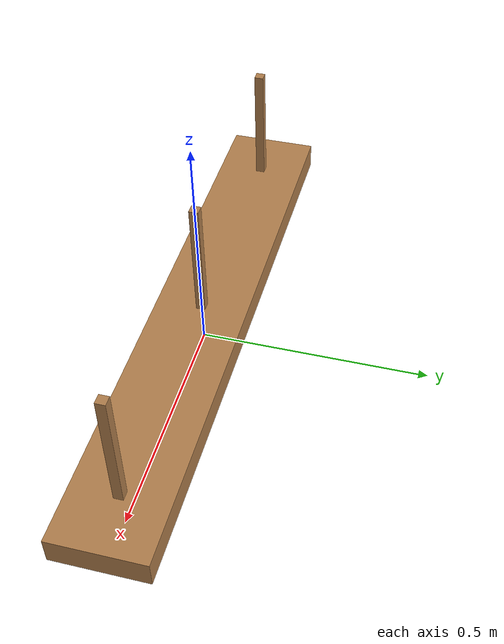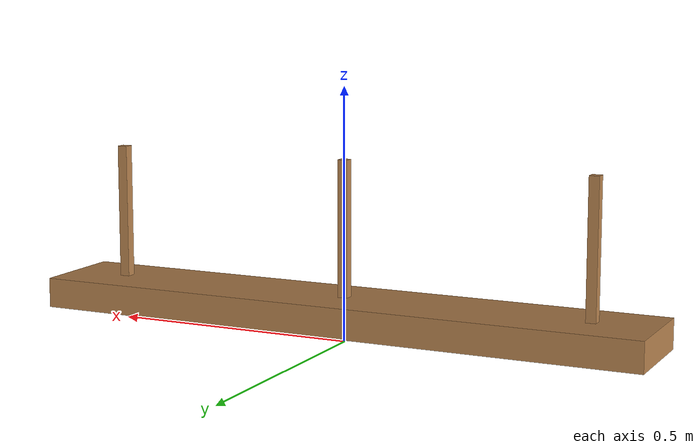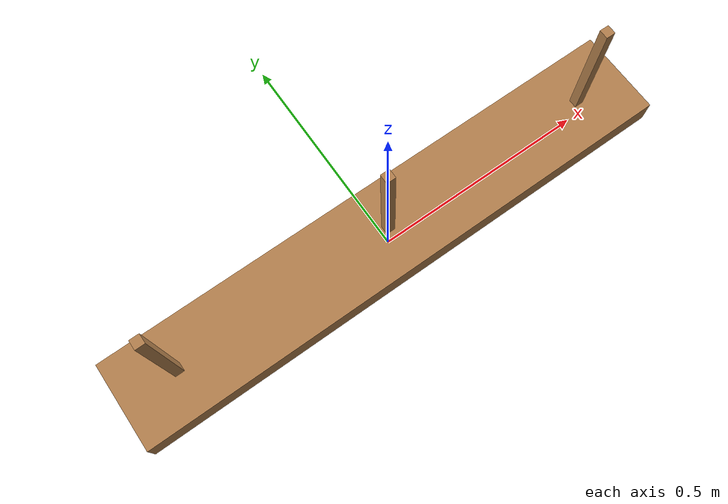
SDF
<?xml version="1.0" ?>

<sdf version="1.5">
  <model name="hanoi_peg_board">
    <pose>0 0 0.06 0 0 0 </pose>

    <link name="link">
      <inertial>
        <mass>1500.0</mass>
        <inertia>
          <ixx>5.450000000000001</ixx>
          <ixy>0</ixy>
          <ixz>0</ixz>
          <iyy>195.76250000000002</iyy>
          <iyz>0</iyz>
          <izz>200.3125</izz>
        </inertia>
      </inertial>
      <collision name="board_collision">
        <geometry>
          <box>
            <size>1.25 0.2 0.06</size>
          </box>
        </geometry>
      </collision>
      <visual name="board_visual">
        <geometry>
          <box>
            <size>1.25 0.2 0.06</size>
          </box>
        </geometry>
        <material>
          <script>
            <uri>file://media/materials/scripts/gazebo.material</uri>
            <name>Gazebo/Wood</name>
          </script>
        </material>
      </visual>

      <visual name="vis_peg1">
        <pose> -0.5 0 0.15 0 0 0</pose>
        <geometry>
          <box>
            <size>0.02 0.02 0.3</size>
          </box>
        </geometry>
        <material>
          <script>
            <uri>file://media/materials/scripts/gazebo.material</uri>
            <name>Gazebo/Wood</name>
         </script>
        </material>
      </visual>
      <collision name="col_peg1">
        <pose> -0.5 0 0.15 0 0 0</pose>
        <geometry>
          <box>
            <size>0.02 0.02 0.3</size>
          </box>
        </geometry>
        <surface>
          <friction>
            <ode>
              <mu>0</mu>
              <mu2>0</mu2>
            </ode>
          </friction>
          <contact>
            <ode>
              <min_depth>0.001</min_depth>
              <max_vel>0.1</max_vel>
              <kp>1e8</kp>
              <kd>1</kd>
            </ode>
          </contact>
        </surface>
      </collision>

      <visual name="vis_peg2">
        <pose>0 0 0.15 0 0 0</pose>
        <geometry>
          <box>
            <size>0.02 0.02 0.3</size>
          </box>
        </geometry>
        <material>
          <script>
            <uri>file://media/materials/scripts/gazebo.material</uri>
            <name>Gazebo/Wood</name>
         </script>
        </material>
      </visual>
      <collision name="col_peg2">
        <pose>0 0 0.15 0 0 0</pose>
        <geometry>
          <box>
            <size>0.02 0.02 0.3</size>
          </box>
        </geometry>
        <surface>
          <friction>
            <ode>
              <mu>0</mu>
              <mu2>0</mu2>
            </ode>
          </friction>
          <contact>
            <ode>
              <min_depth>0.001</min_depth>
              <max_vel>0.1</max_vel>
              <kp>1e8</kp>
              <kd>1</kd>
            </ode>
          </contact>
        </surface>
      </collision>

      <visual name="vis_peg3">
        <pose>0.5 0 0.15 0 0 0</pose>
        <geometry>
          <box>
            <size>0.02 0.02 0.3</size>
          </box>
        </geometry>
        <material>
          <script>
            <uri>file://media/materials/scripts/gazebo.material</uri>
            <name>Gazebo/Wood</name>
         </script>
        </material>
      </visual>
      <collision name="col_peg3">
        <pose>0.5 0 0.15 0 0 0</pose>
        <geometry>
          <cylinder>
            <radius>0.01</radius>
            <length>0.3</length>
          </cylinder>
        </geometry>
        <surface>
          <friction>
            <ode>
              <mu>0</mu>
              <mu2>0</mu2>
            </ode>
          </friction>
          <contact>
            <ode>
              <min_depth>0.001</min_depth>
              <max_vel>0.1</max_vel>
              <kp>1e8</kp>
              <kd>1</kd>
            </ode>
          </contact>
        </surface>
      </collision>
    </link>

  </model>
</sdf>
